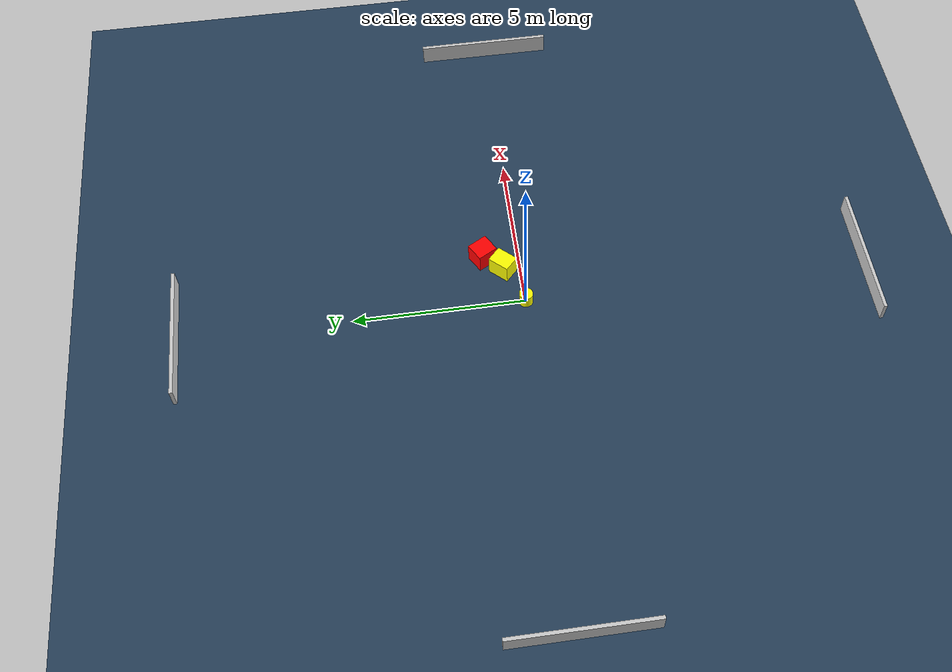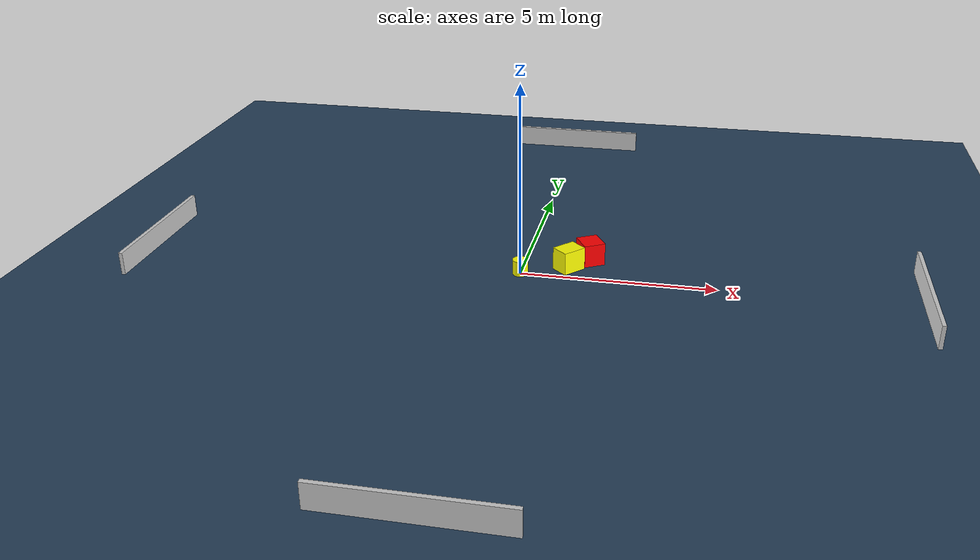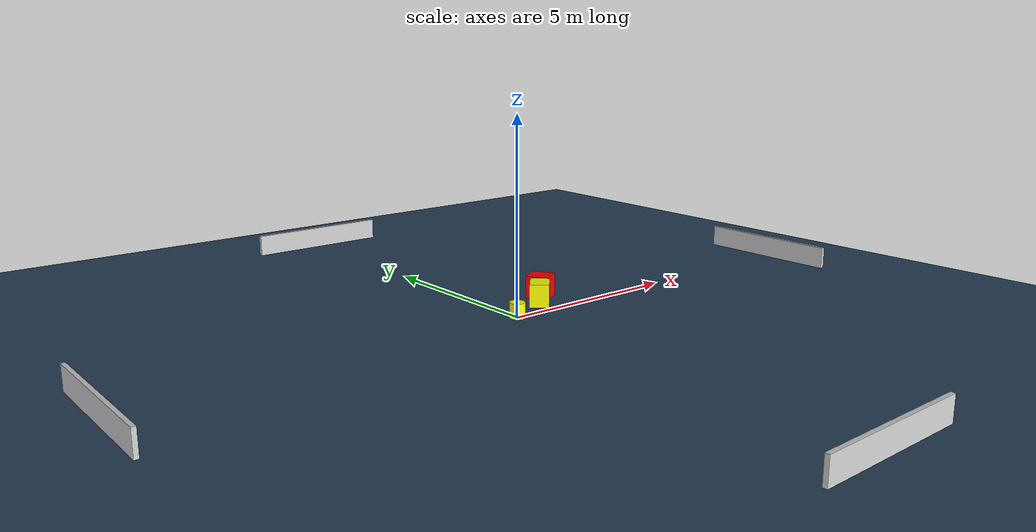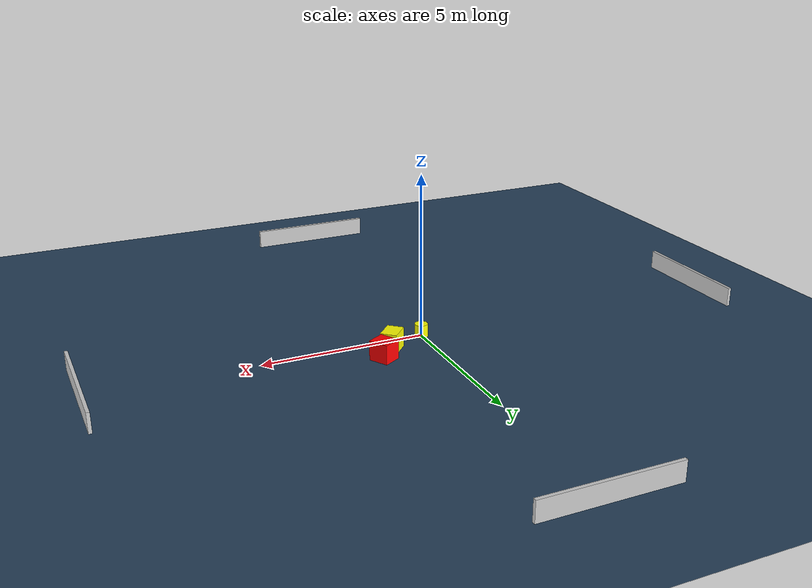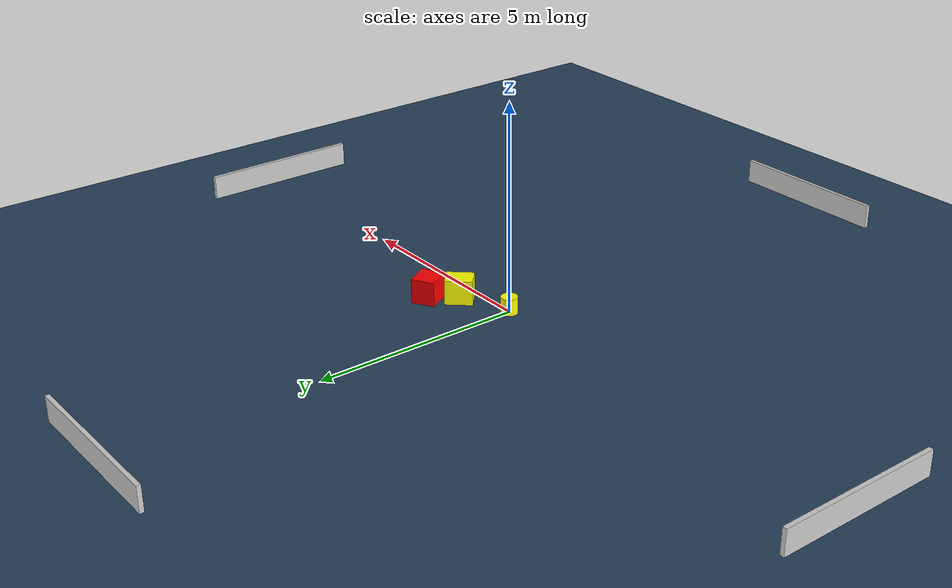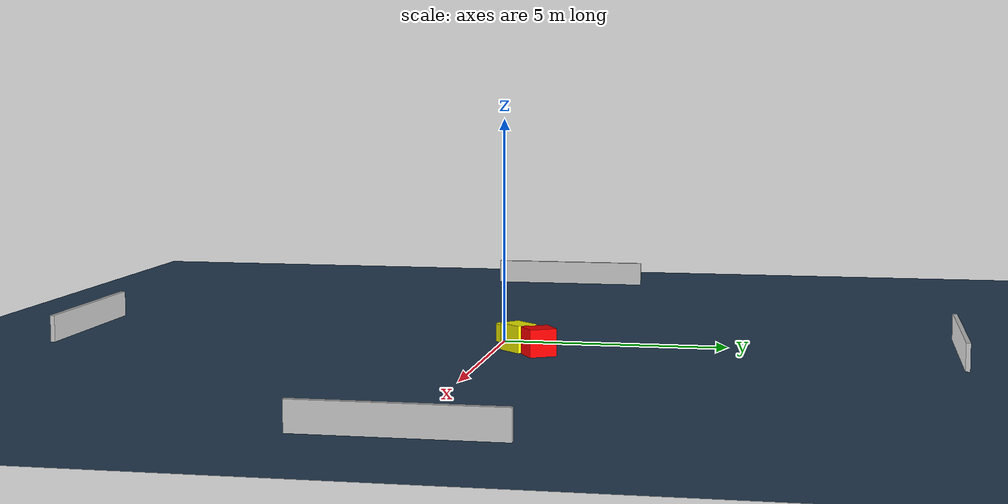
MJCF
<?xml version="1.0" ?>
<mujoco model="generated_environment">
  <option timestep="0.01" integrator="RK4" cone="elliptic"/>
  <default>
    <geom density="1"/>
  </default>
  <asset>
    <texture builtin="gradient" height="3072" name="skybox" rgb1="0.3 0.5 0.7" rgb2="0 0 0" type="skybox" width="512"/>
    <texture builtin="checker" height="300" name="groundplane" rgb1="0.2 0.3 0.4" rgb2="0.1 0.2 0.3" type="2d" width="300"/>
    <material name="groundplane" reflectance="0.2" texrepeat="5 5" texture="groundplane"/>
  </asset>
  <worldbody>
    <light dir="0 0 -1" directional="true" pos="0 0 1.5"/>
    <geom condim="3" friction="0.5 0.005 0.001" material="groundplane" name="floor" pos="0 0 0" size="0 0 0.05" type="plane"/>
    <body name="walls">
      <geom name="wall_1" condim="4" pos="-10.0 0.0 0.3" rgba="0.800000011920929 0.800000011920929 0.800000011920929 1.0" size="0.05 2.0 0.3" type="box"/>
      <geom name="wall_2" condim="4" pos="10.0 0.0 0.3" rgba="0.800000011920929 0.800000011920929 0.800000011920929 1.0" size="0.05 2.0 0.3" type="box"/>
      <geom name="wall_3" condim="4" pos="0.0 -10.0 0.3" rgba="0.800000011920929 0.800000011920929 0.800000011920929 1.0" size="2.0 0.05 0.3" type="box"/>
      <geom name="wall_4" condim="4" pos="0.0 10.0 0.3" rgba="0.800000011920929 0.800000011920929 0.800000011920929 1.0" size="2.0 0.05 0.3" type="box"/>
    </body>
    <body name="robot">
      <joint name="joint_x" type="slide" pos="0 0 0" axis="1 0 0"/>
      <joint name="joint_y" type="slide" pos="0 0 0" axis="0 1 0"/>
      <geom name="robot" type="cylinder" pos="0.0 0.0 0.2" size="0.2 0.2 0.0" mass="5.0" friction="1.0 0.005 0.0001" condim="4" rgba="1.0 1.0 0.0 1.0"/>
    </body>
    <body name="obstacle_1_movable">
      <geom name="obstacle_1_movable" condim="4" pos="1.178555103304603 0.5161314589965091 0.3" euler="0 0 137.36395418125886" friction="0.0 0.005 0.001" rgba="1.0 1.0 0.0 1.0" size="0.2500710171654065 0.3239433616007602 0.3" type="box" mass="0.1"/>
      <joint type="free"/>
    </body>
    <body name="obstacle_2_static">
      <geom name="obstacle_2_static" condim="4" pos="1.6664593924420883 1.0537882146934234 0.3" euler="0 0 210.10483520079885" friction="0.0 0.005 0.001" rgba="1.0 0.0 0.0 1.0" size="0.28267635379619044 0.30721508250736657 0.3" type="box"/>
    </body>
  </worldbody>
  <actuator>
    <motor name="actuator_x" joint="joint_x" gear="1" ctrlrange="-1 1"/>
    <motor name="actuator_y" joint="joint_y" gear="1" ctrlrange="-1 1"/>
  </actuator>
</mujoco>
